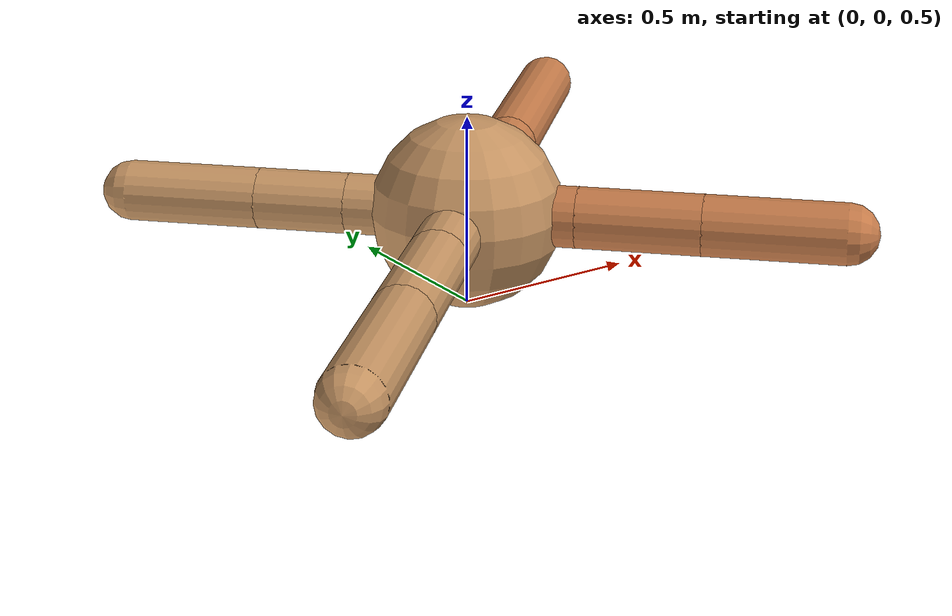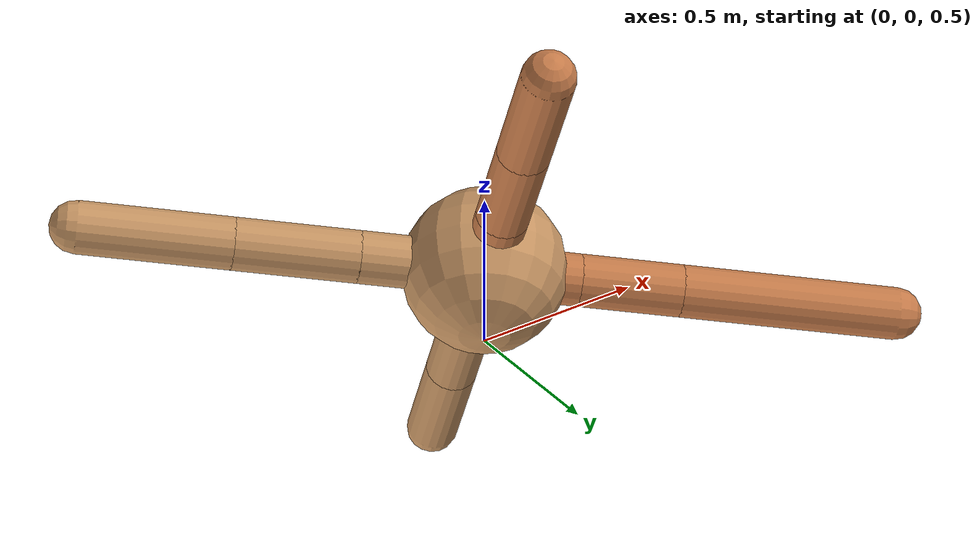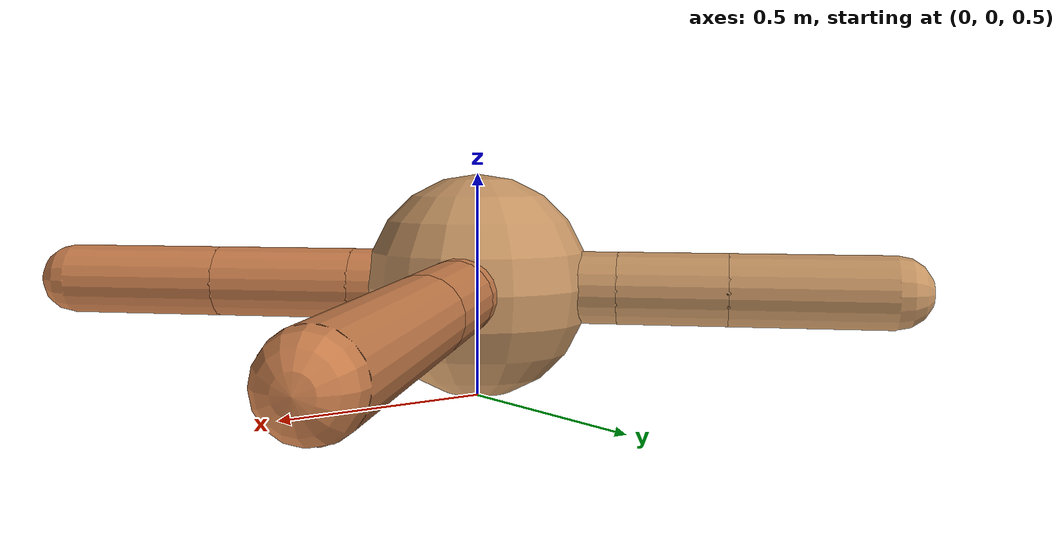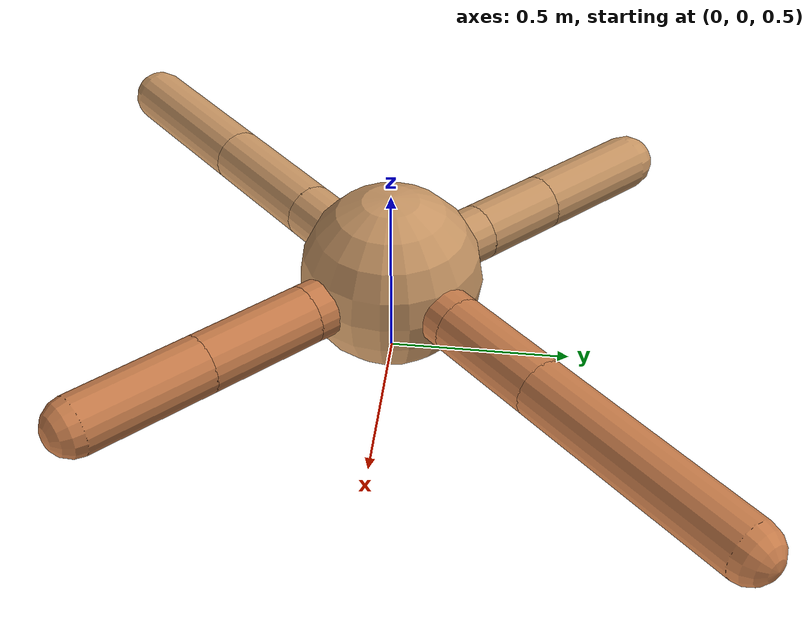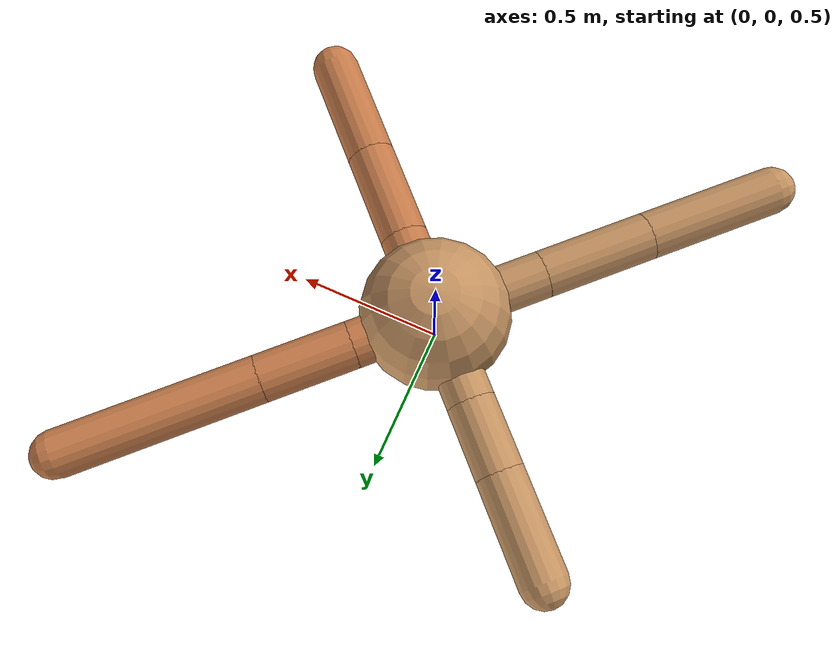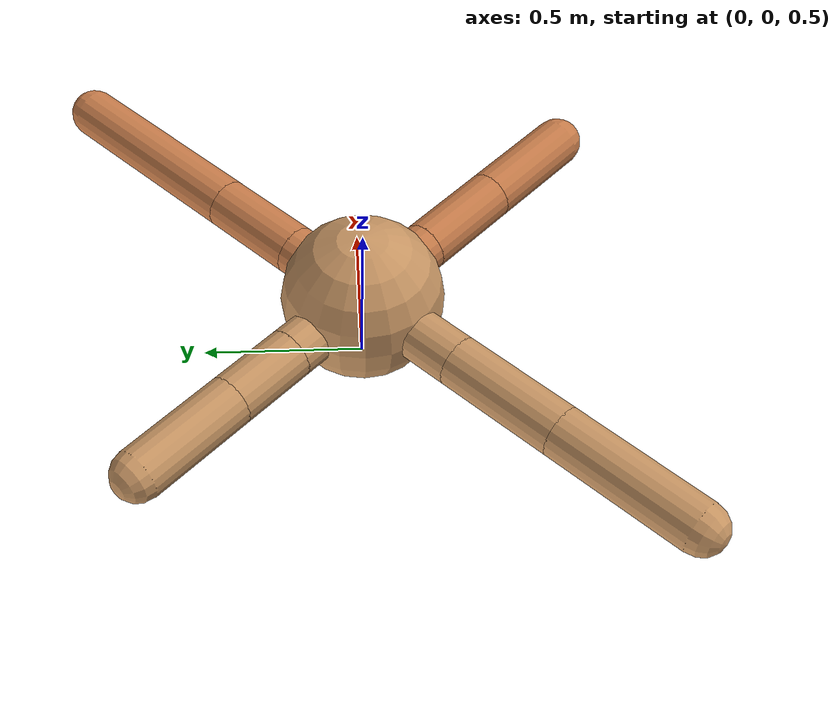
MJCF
<mujoco model="ant">
  <compiler angle="degree" coordinate="local" inertiafromgeom="true" />
  <option integrator="RK4" timestep="0.01" />
  <custom>
    <numeric data="0.0 0.0 0.55 1.0 0.0 0.0 0.0 0.0 1.0 0.0 -1.0 0.0 -1.0 0.0 1.0" name="init_qpos" />
  </custom>
  <default>
    <joint armature="1" damping="1" limited="true" />
    <geom conaffinity="0" condim="3" density="5.0" friction="1.5 0.1 0.1" margin="0.01" rgba="0.8 0.6 0.4 1" />
  </default>
  <worldbody>
    <body name="torso" pos="0 0 0.75">
      <geom name="torso_geom" pos="0 0 0" size="0.25" type="sphere" />

      <body name="front_left_leg" pos="0 0 0">
        <geom fromto="0.0 0.0 0.0 0.20198660044930605 0.20198660044930605 0.0" name="aux_1_geom" size="0.08" type="capsule" rgba=".8 .5 .3 1" />
        <body name="aux_1" pos="0.20198660044930605 0.20198660044930605 0.0">
          <joint axis="0 0 1" name="hip_1" pos="0.0 0.0 0.0" range="-40 40" type="hinge" />
          <geom fromto="0.0 0.0 0.0 0.2194480661385584 0.2194480661385584 0.0" name="left_leg_geom" size="0.08" type="capsule" rgba=".8 .5 .3 1" />
          <body pos="0.2194480661385584 0.2194480661385584 0.0" name="front_left_foot">
            <joint axis="-1 1 0" name="ankle_1" pos="0.0 0.0 0.0" range="30 100" type="hinge" />
            <geom fromto="0.0 0.0 0.0 0.4715270243333047 0.4715270243333047 0.0" name="left_ankle_geom" size="0.08" type="capsule" rgba=".8 .5 .3 1" />
          </body>
        </body>
      </body>
      <body name="front_right_leg" pos="0 0 0">
        <geom fromto="0.0 0.0 0.0 -0.22102128841056948 0.22102128841056948 0.0" name="aux_2_geom" size="0.08" type="capsule" />
        <body name="aux_2" pos="-0.22102128841056948 0.22102128841056948 0.0">
          <joint axis="0 0 1" name="hip_2" pos="0.0 0.0 0.0" range="-40 40" type="hinge" />
          <geom fromto="0.0 0.0 0.0 -0.1687730005282694 0.1687730005282694 0.0" name="right_leg_geom" size="0.08" type="capsule" />
          <body pos="-0.1687730005282694 0.1687730005282694 0.0" name="front_right_foot">
            <joint axis="1 1 0" name="ankle_2" pos="0.0 0.0 0.0" range="-100 -30" type="hinge" />
            <geom fromto="0.0 0.0 0.0 -0.2472796196962652 0.2472796196962652 0.0" name="right_ankle_geom" size="0.08" type="capsule" />
          </body>
        </body>
      </body>
      <body name="left_back_leg" pos="0 0 0">
        <geom fromto="0.0 0.0 0.0 -0.2678030421717226 -0.2678030421717226 0.0" name="aux_3_geom" size="0.08" type="capsule" />
        <body name="aux_3" pos="-0.2678030421717226 -0.2678030421717226 0.0">
          <joint axis="0 0 1" name="hip_3" pos="0.0 0.0 0.0" range="-40 40" type="hinge" />
          <geom fromto="0.0 0.0 0.0 -0.26518182388323297 -0.26518182388323297 0.0" name="back_leg_geom" size="0.08" type="capsule" />
          <body pos="-0.26518182388323297 -0.26518182388323297 0.0" name="left_back_foot">
            <joint axis="-1 1 0" name="ankle_3" pos="0.0 0.0 0.0" range="-100 -30" type="hinge" />
            <geom fromto="0.0 0.0 0.0 -0.3274928258446199 -0.3274928258446199 0.0" name="third_ankle_geom" size="0.08" type="capsule" />
          </body>
        </body>
      </body>
      <body name="right_back_leg" pos="0 0 0">
        <geom fromto="0.0 0.0 0.0 0.20236042309292668 -0.20236042309292668 0.0" name="aux_4_geom" size="0.08" type="capsule" rgba=".8 .5 .3 1" />
        <body name="aux_4" pos="0.20236042309292668 -0.20236042309292668 0.0">
          <joint axis="0 0 1" name="hip_4" pos="0.0 0.0 0.0" range="-40 40" type="hinge" />
          <geom fromto="0.0 0.0 0.0 0.22666181895047002 -0.22666181895047002 0.0" name="rightback_leg_geom" size="0.08" type="capsule" rgba=".8 .5 .3 1" />
          <body pos="0.22666181895047002 -0.22666181895047002 0.0" name="right_back_foot">
            <joint axis="1 1 0" name="ankle_4" pos="0.0 0.0 0.0" range="30 100" type="hinge" />
            <geom fromto="0.0 0.0 0.0 0.2561534518216379 -0.2561534518216379 0.0" name="fourth_ankle_geom" size="0.08" type="capsule" rgba=".8 .5 .3 1" />
          </body>
        </body>
      </body>
    </body>
  </worldbody>
  <actuator>
    <motor ctrllimited="true" ctrlrange="-1.0 1.0" joint="hip_4" gear="150" />
    <motor ctrllimited="true" ctrlrange="-1.0 1.0" joint="ankle_4" gear="150" />
    <motor ctrllimited="true" ctrlrange="-1.0 1.0" joint="hip_1" gear="150" />
    <motor ctrllimited="true" ctrlrange="-1.0 1.0" joint="ankle_1" gear="150" />
    <motor ctrllimited="true" ctrlrange="-1.0 1.0" joint="hip_2" gear="150" />
    <motor ctrllimited="true" ctrlrange="-1.0 1.0" joint="ankle_2" gear="150" />
    <motor ctrllimited="true" ctrlrange="-1.0 1.0" joint="hip_3" gear="150" />
    <motor ctrllimited="true" ctrlrange="-1.0 1.0" joint="ankle_3" gear="150" />
  </actuator>
</mujoco>
